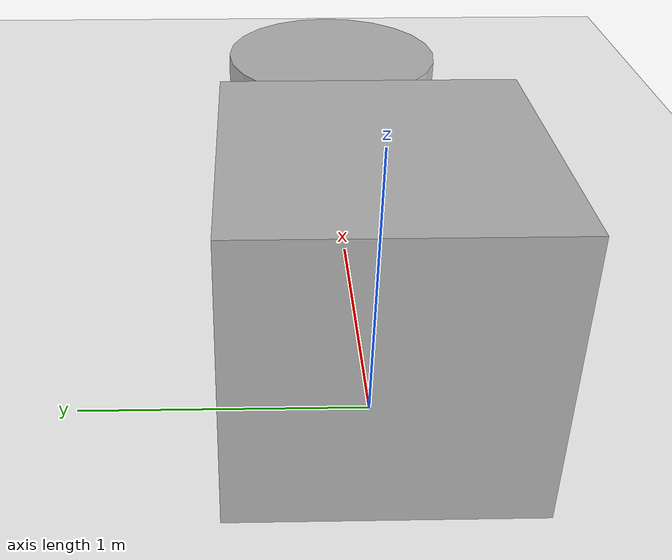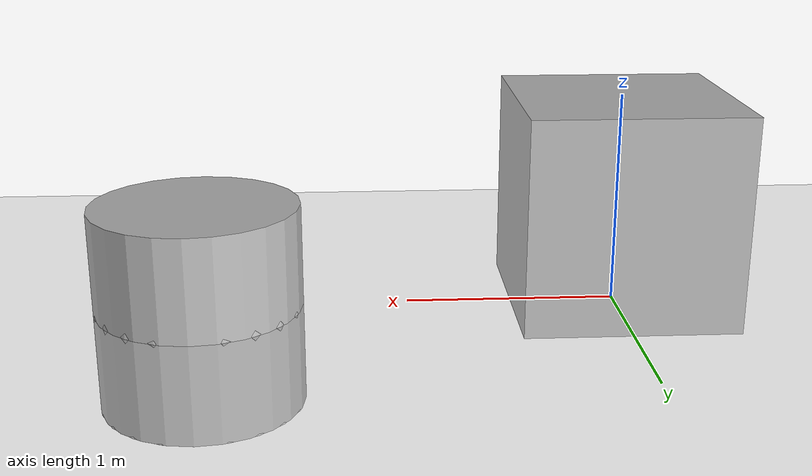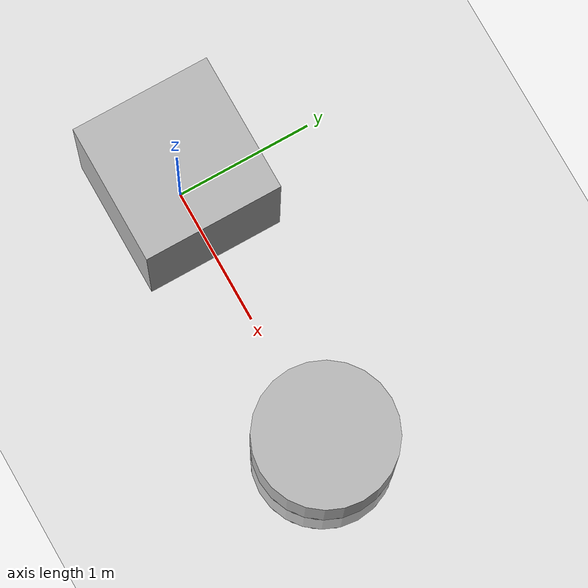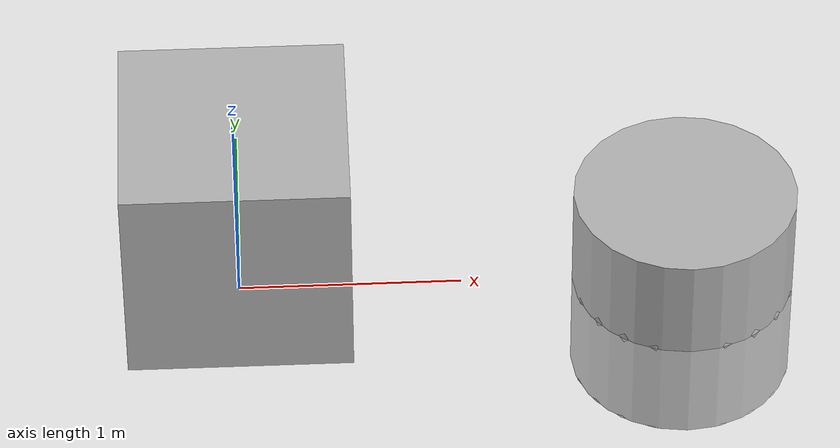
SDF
<sdf version='1.12'>
  <world name='unit_shapes'>
    <model name='ground_plane'>
      <static>true</static>
      <link name='link'>
        <collision name='collision'>
          <geometry>
            <plane>
              <normal>0 0 1</normal>
              <size>1.3999999999999999 6.2999999999999998</size>
            </plane>
          </geometry>
        </collision>
        <visual name='visual'>
          <geometry>
            <plane>
              <normal>0 0 1</normal>
              <size>2 4</size>
            </plane>
          </geometry>
        </visual>
      </link>
    </model>
    <model name='unit_box'>
      <pose relative_to='ground_plane'>0 0 0.5 0 0 0</pose>
      <link name='link'>
        <inertial auto='true'>
          <density>12</density>
          <pose>0 0 0 0 0 0</pose>
          <mass>12</mass>
          <inertia>
            <ixx>2</ixx>
            <ixy>0</ixy>
            <ixz>0</ixz>
            <iyy>2</iyy>
            <iyz>0</iyz>
            <izz>2</izz>
          </inertia>
        </inertial>
        <collision name='collision'>
          <geometry>
            <box>
              <size>1 1 1</size>
            </box>
          </geometry>
        </collision>
        <visual name='box_vis'>
          <geometry>
            <box>
              <size>1 1 1</size>
            </box>
          </geometry>
        </visual>
      </link>
    </model>
    <model name='unit_cylinder'>
      <pose relative_to='unit_box'>2 0 0 0 0 0</pose>
      <link name='link'>
        <inertial auto='true'>
          <density>12</density>
          <pose>0 0 0 0 0 0</pose>
          <mass>9.4247779607693793</mass>
          <inertia>
            <ixx>1.3744467859455345</ixx>
            <ixy>0</ixy>
            <ixz>0</ixz>
            <iyy>1.3744467859455345</iyy>
            <iyz>0</iyz>
            <izz>1.1780972450961724</izz>
          </inertia>
        </inertial>
        <collision name='collision'>
          <geometry>
            <cylinder>
              <radius>0.5</radius>
              <length>1</length>
            </cylinder>
          </geometry>
        </collision>
        <visual name='visual'>
          <geometry>
            <cylinder>
              <radius>0.5</radius>
              <length>1</length>
            </cylinder>
          </geometry>
        </visual>
      </link>
    </model>
    <model name='unit_sphere'>
      <pose relative_to='unit_cylinder'>2 0 0 0 0 0</pose>
      <link name='link'>
        <inertial auto='true'>
          <density>12</density>
          <pose>0 0 0 0 0 0</pose>
          <mass>6.2831853071795862</mass>
          <inertia>
            <ixx>0.62831853071795862</ixx>
            <ixy>0</ixy>
            <ixz>0</ixz>
            <iyy>0.62831853071795862</iyy>
            <iyz>0</iyz>
            <izz>0.62831853071795862</izz>
          </inertia>
        </inertial>
        <collision name='collision'>
          <geometry>
            <sphere>
              <radius>0.5</radius>
            </sphere>
          </geometry>
        </collision>
        <visual name='sphere_vis'>
          <geometry>
            <sphere>
              <radius>0.5</radius>
            </sphere>
          </geometry>
        </visual>
      </link>
    </model>
    <model name='unit_cone'>
      <pose relative_to='unit_sphere'>2 0 0 0 0 0</pose>
      <link name='link'>
        <inertial auto='true'>
          <density>12</density>
          <pose>0 0 -0.25 0 0 0</pose>
          <mass>9.4247779607693793</mass>
          <inertia>
            <ixx>0.70685834705770345</ixx>
            <ixy>0</ixy>
            <ixz>0</ixz>
            <iyy>0.70685834705770345</iyy>
            <iyz>0</iyz>
            <izz>0.70685834705770345</izz>
          </inertia>
        </inertial>
        <collision name='collision'>
          <geometry>
            <cone>
              <radius>0.5</radius>
              <length>1</length>
            </cone>
          </geometry>
        </collision>
        <visual name='visual'>
          <geometry>
            <cone>
              <radius>0.5</radius>
              <length>1</length>
            </cone>
          </geometry>
        </visual>
      </link>
    </model>
    <gravity>0 0 -9.8000000000000007</gravity>
    <magnetic_field>5.5644999999999998e-06 2.2875799999999999e-05 -4.2388400000000002e-05</magnetic_field>
    <atmosphere type='adiabatic'/>
    <physics type='ode'>
      <max_step_size>0.001</max_step_size>
      <real_time_factor>1</real_time_factor>
      <real_time_update_rate>1000</real_time_update_rate>
    </physics>
    <scene>
      <ambient>0.400000006 0.400000006 0.400000006 1</ambient>
      <background>0.699999988 0.699999988 0.699999988 1</background>
      <shadows>true</shadows>
    </scene>
  </world>
</sdf>
